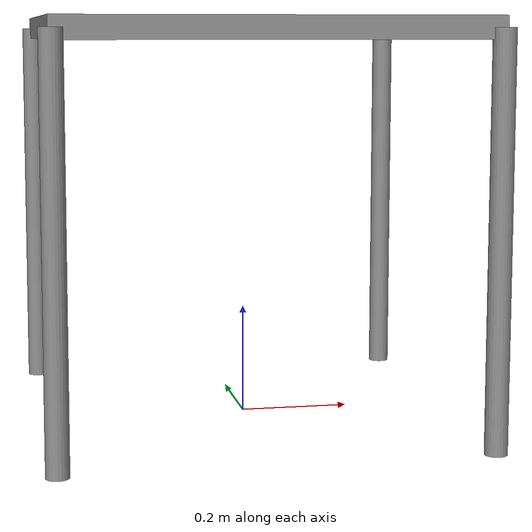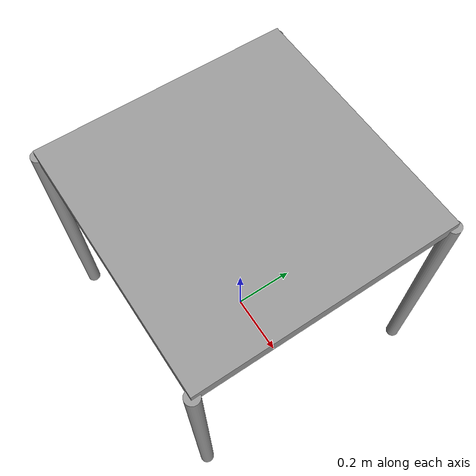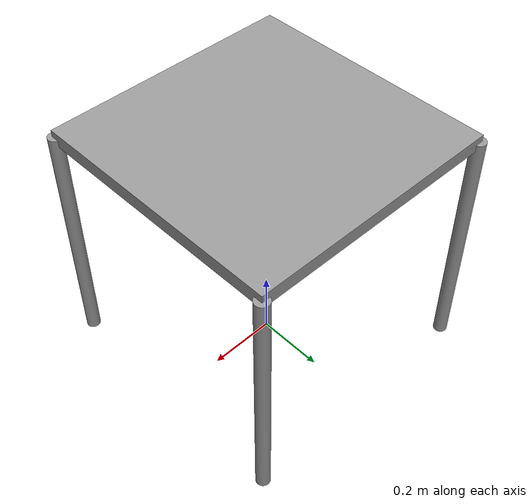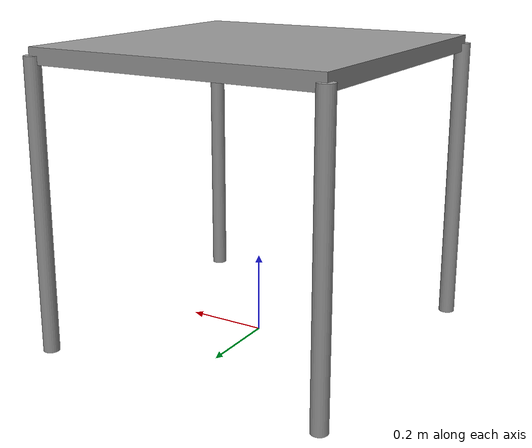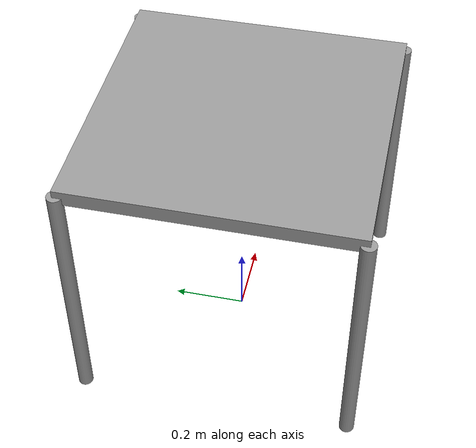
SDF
<sdf version='1.3'>
<model name='table'>
      <static>1</static>
      <link name='link'>
        <collision name='surface'>
          <pose>0.000000 0.000000 0.7200000 0.000000 0.000000 0.000000</pose>
          <geometry>
            <box>
              <size>0.750000 0.750000 0.040000</size>
            </box>
          </geometry>
          <surface>
            <bounce/>
            <friction>
              <ode/>
            </friction>
            <contact>
              <ode/>
            </contact>
          </surface>
        </collision>
        <visual name='visual1'>
          <pose>0.000000 0.000000 0.7200000 0.000000 0.000000 0.000000</pose>
          <geometry>
            <box>
              <size>0.750000 0.750000 0.040000</size>
            </box>
          </geometry>
          <material>
            <script>
              <uri>file://media/materials/scripts/gazebo.material</uri>
              <name>Gazebo/Grey</name>
            </script>
          </material>
        </visual>
        <collision name='front_left_leg'>
          <pose>0.370000 0.370000 0.3600000 0.000000 0.000000 0.000000</pose>
          <geometry>
            <cylinder>
              <radius>0.020000</radius>
              <length>0.7200000</length>
            </cylinder>
          </geometry>
          <surface>
            <bounce/>
            <friction>
              <ode/>
            </friction>
            <contact>
              <ode/>
            </contact>
          </surface>
        </collision>
        <visual name='front_left_leg'>
          <pose>0.370000 0.370000 0.3600000 0.000000 0.000000 0.000000</pose>
          <geometry>
            <cylinder>
              <radius>0.020000</radius>
              <length>0.7200000</length>
            </cylinder>
          </geometry>
          <material>
            <script>
              <uri>file://media/materials/scripts/gazebo.material</uri>
              <name>Gazebo/Grey</name>
            </script>
          </material>
        </visual>
        <collision name='front_right_leg'>
          <pose>0.370000 -0.370000 0.3600000 0.000000 0.000000 0.000000</pose>
          <geometry>
            <cylinder>
              <radius>0.020000</radius>
              <length>0.72000000</length>
            </cylinder>
          </geometry>
          <surface>
            <bounce/>
            <friction>
              <ode/>
            </friction>
            <contact>
              <ode/>
            </contact>
          </surface>
        </collision>
        <visual name='front_right_leg'>
          <pose>0.370000 -0.370000 0.3600000 0.000000 0.000000 0.000000</pose>
          <geometry>
            <cylinder>
              <radius>0.020000</radius>
              <length>0.7200000</length>
            </cylinder>
          </geometry>
          <material>
            <script>
              <uri>file://media/materials/scripts/gazebo.material</uri>
              <name>Gazebo/Grey</name>
            </script>
          </material>
        </visual>
        <collision name='back_right_leg'>
          <pose>-0.370000 -0.370000 0.3600000 0.000000 0.000000 0.000000</pose>
          <geometry>
            <cylinder>
              <radius>0.020000</radius>
              <length>0.72000000</length>
            </cylinder>
          </geometry>
          <surface>
            <bounce/>
            <friction>
              <ode/>
            </friction>
            <contact>
              <ode/>
            </contact>
          </surface>
        </collision>
        <visual name='back_right_leg'>
          <pose>-0.370000 -0.370000 0.3600000 0.000000 0.000000 0.000000</pose>
          <geometry>
            <cylinder>
              <radius>0.020000</radius>
              <length>0.7200000</length>
            </cylinder>
          </geometry>
          <material>
            <script>
              <uri>file://media/materials/scripts/gazebo.material</uri>
              <name>Gazebo/Grey</name>
            </script>
          </material>
        </visual>
        <collision name='back_left_leg'>
          <pose>-0.370000 0.370000 0.3600000 0.000000 0.000000 0.000000</pose>
          <geometry>
            <cylinder>
              <radius>0.020000</radius>
              <length>0.7200000</length>
            </cylinder>
          </geometry>
          <surface>
            <bounce/>
            <friction>
              <ode/>
            </friction>
            <contact>
              <ode/>
            </contact>
          </surface>
        </collision>
        <visual name='back_left_leg'>
          <pose>-0.370000 0.370000 0.3600000 0.000000 0.000000 0.000000</pose>
          <geometry>
            <cylinder>
              <radius>0.020000</radius>
              <length>0.7200000</length>
            </cylinder>
          </geometry>
          <material>
            <script>
              <uri>file://media/materials/scripts/gazebo.material</uri>
              <name>Gazebo/Grey</name>
            </script>
          </material>
        </visual>
        <velocity_decay>
          <linear>0.000000</linear>
          <angular>0.000000</angular>
        </velocity_decay>
        <self_collide>0</self_collide>
        <kinematic>0</kinematic>
        <gravity>1</gravity>
      </link>
    </model>
</sdf>
